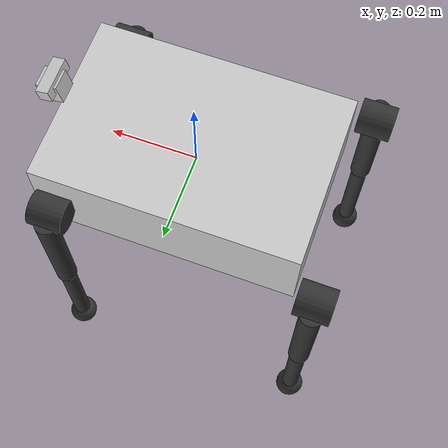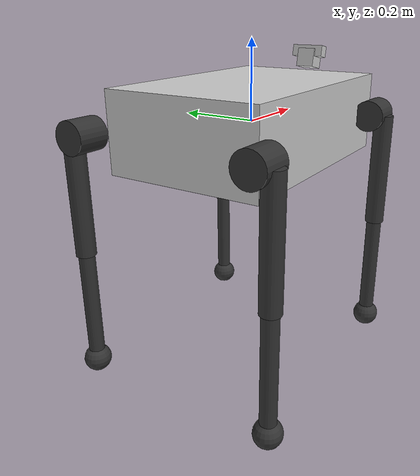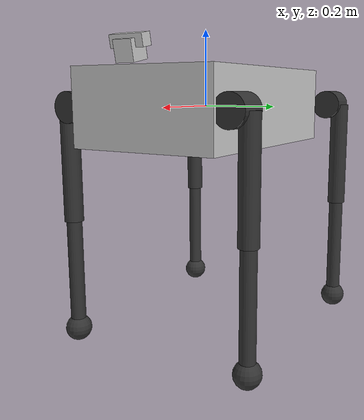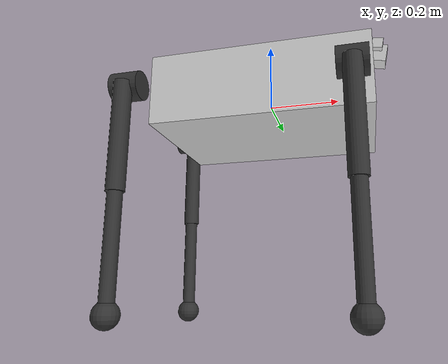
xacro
<?xml version="1.0"?>
<robot xmlns:xacro="http://www.ros.org/wiki/xacro" name="anymal_simple">

  <!-- Constants -->
  <xacro:property name="body_length" value="0.6"/>
  <xacro:property name="body_width" value="0.4"/>
  <xacro:property name="body_height" value="0.2"/>
  <xacro:property name="upper_leg_length" value="0.3"/>
  <xacro:property name="lower_leg_length" value="0.3"/>
  <xacro:property name="foot_radius" value="0.035"/>

  <!-- Physics properties -->
  <xacro:property name="body_mass" value="35.0"/>
  <xacro:property name="hip_mass" value="2.5"/>
  <xacro:property name="upper_leg_mass" value="2.0"/>
  <xacro:property name="lower_leg_mass" value="1.2"/>
  <xacro:property name="foot_mass" value="0.15"/>

  <!-- Friction and damping -->
  <xacro:property name="joint_damping" value="0.5"/>
  <xacro:property name="joint_friction" value="0.1"/>
  <xacro:property name="foot_friction_mu1" value="1.5"/>
  <xacro:property name="foot_friction_mu2" value="1.5"/>

  <!-- Materials -->
  <material name="body_color">
    <color rgba="0.8 0.8 0.8 1.0"/>
  </material>

  <material name="leg_color">
    <color rgba="0.2 0.2 0.2 1.0"/>
  </material>

  <!-- Base link (body) -->
  <link name="base_link">
    <visual>
      <geometry>
        <box size="${body_length} ${body_width} ${body_height}"/>
      </geometry>
      <material name="body_color"/>
    </visual>
    <collision>
      <geometry>
        <box size="${body_length} ${body_width} ${body_height}"/>
      </geometry>
      <surface>
        <friction>
          <ode>
            <mu>0.8</mu>
            <mu2>0.8</mu2>
          </ode>
        </friction>
      </surface>
    </collision>
    <inertial>
      <origin xyz="0 0 0" rpy="0 0 0"/>
      <mass value="${body_mass}"/>
      <inertia
        ixx="${body_mass * (body_width*body_width + body_height*body_height) / 12.0}"
        ixy="0.0"
        ixz="0.0"
        iyy="${body_mass * (body_length*body_length + body_height*body_height) / 12.0}"
        iyz="0.0"
        izz="${body_mass * (body_length*body_length + body_width*body_width) / 12.0}"/>
    </inertial>
  </link>

  <!-- IMU link -->
  <link name="imu_link">
    <inertial>
      <mass value="0.01"/>
      <inertia ixx="0.0001" ixy="0" ixz="0" iyy="0.0001" iyz="0" izz="0.0001"/>
    </inertial>
  </link>

  <joint name="imu_joint" type="fixed">
    <parent link="base_link"/>
    <child link="imu_link"/>
    <origin xyz="0 0 0" rpy="0 0 0"/>
  </joint>

  <!-- IMU sensor plugin -->
  <gazebo reference="imu_link">
    <sensor name="imu_sensor" type="imu">
      <always_on>true</always_on>
      <update_rate>100</update_rate>
      <plugin filename="libgazebo_ros_imu_sensor.so" name="imu_plugin">
        <ros>
          <namespace>/</namespace>
          <remapping>~/out:=imu</remapping>
        </ros>
        <initial_orientation_as_reference>false</initial_orientation_as_reference>
      </plugin>
    </sensor>
  </gazebo>

  <!-- Leg macro -->
  <xacro:macro name="leg" params="name x y reflect">

    <!-- Hip joint (HAA - Hip Abduction/Adduction) -->
    <joint name="${name}_haa_joint" type="revolute">
      <parent link="base_link"/>
      <child link="${name}_hip_link"/>
      <origin xyz="${x} ${y} 0" rpy="0 0 0"/>
      <axis xyz="1 0 0"/>
      <limit lower="-0.4" upper="0.4" effort="80" velocity="12"/>
      <dynamics damping="${joint_damping}" friction="${joint_friction}"/>
    </joint>

    <link name="${name}_hip_link">
      <visual>
        <origin xyz="0 ${reflect*0.03} 0" rpy="0 1.5708 0"/>
        <geometry>
          <cylinder radius="0.04" length="0.08"/>
        </geometry>
        <material name="leg_color"/>
      </visual>
      <collision>
        <origin xyz="0 ${reflect*0.03} 0" rpy="0 1.5708 0"/>
        <geometry>
          <cylinder radius="0.04" length="0.08"/>
        </geometry>
      </collision>
      <inertial>
        <origin xyz="0 ${reflect*0.03} 0" rpy="0 0 0"/>
        <mass value="${hip_mass}"/>
        <inertia ixx="0.002" ixy="0.0" ixz="0.0" iyy="0.002" iyz="0.0" izz="0.001"/>
      </inertial>
    </link>

    <!-- Hip flexion joint (HFE - Hip Flexion/Extension) -->
    <joint name="${name}_hfe_joint" type="revolute">
      <parent link="${name}_hip_link"/>
      <child link="${name}_upper_leg_link"/>
      <origin xyz="0 ${reflect*0.06} 0" rpy="0 0 0"/>
      <axis xyz="0 1 0"/>
      <limit lower="-1.8" upper="1.8" effort="80" velocity="12"/>
      <dynamics damping="${joint_damping}" friction="${joint_friction}"/>
    </joint>

    <link name="${name}_upper_leg_link">
      <visual>
        <origin xyz="0 0 -${upper_leg_length/2}" rpy="0 0 0"/>
        <geometry>
          <cylinder radius="0.025" length="${upper_leg_length}"/>
        </geometry>
        <material name="leg_color"/>
      </visual>
      <collision>
        <origin xyz="0 0 -${upper_leg_length/2}" rpy="0 0 0"/>
        <geometry>
          <cylinder radius="0.025" length="${upper_leg_length}"/>
        </geometry>
      </collision>
      <inertial>
        <origin xyz="0 0 -${upper_leg_length/2}" rpy="0 0 0"/>
        <mass value="${upper_leg_mass}"/>
        <inertia
          ixx="${upper_leg_mass * (3*0.025*0.025 + upper_leg_length*upper_leg_length) / 12.0}"
          ixy="0.0"
          ixz="0.0"
          iyy="${upper_leg_mass * (3*0.025*0.025 + upper_leg_length*upper_leg_length) / 12.0}"
          iyz="0.0"
          izz="${upper_leg_mass * 0.025*0.025 / 2.0}"/>
      </inertial>
    </link>

    <!-- Knee joint (KFE - Knee Flexion/Extension) -->
    <joint name="${name}_kfe_joint" type="revolute">
      <parent link="${name}_upper_leg_link"/>
      <child link="${name}_lower_leg_link"/>
      <origin xyz="0 0 -${upper_leg_length}" rpy="0 0 0"/>
      <axis xyz="0 1 0"/>
      <limit lower="-2.7" upper="0.6" effort="80" velocity="12"/>
      <dynamics damping="${joint_damping}" friction="${joint_friction}"/>
    </joint>

    <link name="${name}_lower_leg_link">
      <visual>
        <origin xyz="0 0 -${lower_leg_length/2}" rpy="0 0 0"/>
        <geometry>
          <cylinder radius="0.02" length="${lower_leg_length}"/>
        </geometry>
        <material name="leg_color"/>
      </visual>
      <collision>
        <origin xyz="0 0 -${lower_leg_length/2}" rpy="0 0 0"/>
        <geometry>
          <cylinder radius="0.02" length="${lower_leg_length}"/>
        </geometry>
      </collision>
      <inertial>
        <origin xyz="0 0 -${lower_leg_length/2}" rpy="0 0 0"/>
        <mass value="${lower_leg_mass}"/>
        <inertia
          ixx="${lower_leg_mass * (3*0.02*0.02 + lower_leg_length*lower_leg_length) / 12.0}"
          ixy="0.0"
          ixz="0.0"
          iyy="${lower_leg_mass * (3*0.02*0.02 + lower_leg_length*lower_leg_length) / 12.0}"
          iyz="0.0"
          izz="${lower_leg_mass * 0.02*0.02 / 2.0}"/>
      </inertial>
    </link>

    <!-- Foot -->
    <link name="${name}_foot_link">
      <visual>
        <geometry>
          <sphere radius="${foot_radius}"/>
        </geometry>
        <material name="leg_color"/>
      </visual>
      <collision>
        <geometry>
          <sphere radius="${foot_radius}"/>
        </geometry>
        <surface>
          <friction>
            <ode>
              <mu>${foot_friction_mu1}</mu>
              <mu2>${foot_friction_mu2}</mu2>
              <slip1>0.0</slip1>
              <slip2>0.0</slip2>
            </ode>
          </friction>
          <contact>
            <ode>
              <kp>1000000.0</kp>
              <kd>100.0</kd>
              <max_vel>0.01</max_vel>
              <min_depth>0.001</min_depth>
            </ode>
          </contact>
        </surface>
      </collision>
      <inertial>
        <mass value="${foot_mass}"/>
        <inertia
          ixx="${2.0 * foot_mass * foot_radius * foot_radius / 5.0}"
          ixy="0.0"
          ixz="0.0"
          iyy="${2.0 * foot_mass * foot_radius * foot_radius / 5.0}"
          iyz="0.0"
          izz="${2.0 * foot_mass * foot_radius * foot_radius / 5.0}"/>
      </inertial>
    </link>

    <joint name="${name}_foot_joint" type="fixed">
      <parent link="${name}_lower_leg_link"/>
      <child link="${name}_foot_link"/>
      <origin xyz="0 0 -${lower_leg_length}" rpy="0 0 0"/>
    </joint>

    <!-- Gazebo-specific properties for foot -->
    <gazebo reference="${name}_foot_link">
      <mu1>${foot_friction_mu1}</mu1>
      <mu2>${foot_friction_mu2}</mu2>
      <kp>1000000.0</kp>
      <kd>100.0</kd>
      <minDepth>0.001</minDepth>
      <maxVel>0.01</maxVel>
      <material>Gazebo/FlatBlack</material>
    </gazebo>

  </xacro:macro>

  <!-- Create all four legs -->
  <xacro:leg name="lf" x="${body_length/2-0.05}" y="${body_width/2}" reflect="1"/>
  <xacro:leg name="rf" x="${body_length/2-0.05}" y="-${body_width/2}" reflect="-1"/>
  <xacro:leg name="lh" x="-${body_length/2+0.05}" y="${body_width/2}" reflect="1"/>
  <xacro:leg name="rh" x="-${body_length/2+0.05}" y="-${body_width/2}" reflect="-1"/>

  <!-- Camera sensor -->
  <link name="camera_link">
    <visual>
      <geometry>
        <box size="0.05 0.05 0.05"/>
      </geometry>
      <material name="body_color"/>
    </visual>
    <collision>
      <geometry>
        <box size="0.05 0.05 0.05"/>
      </geometry>
    </collision>
    <inertial>
      <mass value="0.1"/>
      <inertia ixx="0.0001" ixy="0.0" ixz="0.0" iyy="0.0001" iyz="0.0" izz="0.0001"/>
    </inertial>
  </link>

  <joint name="camera_joint" type="fixed">
    <parent link="base_link"/>
    <child link="camera_link"/>
    <origin xyz="${body_length/2+0.02} 0 ${body_height/2 + 0.03}" rpy="0 0.2 0"/>
  </joint>

  <!-- Camera sensor plugin -->
  <gazebo reference="camera_link">
    <sensor type="camera" name="camera">
      <always_on>true</always_on>
      <update_rate>30.0</update_rate>
      <camera name="head">
        <horizontal_fov>1.3962634</horizontal_fov>
        <image>
          <width>640</width>
          <height>480</height>
          <format>R8G8B8</format>
        </image>
        <clip>
          <near>0.02</near>
          <far>300</far>
        </clip>
        <noise>
          <type>gaussian</type>
          <mean>0.0</mean>
          <stddev>0.007</stddev>
        </noise>
      </camera>
      <plugin name="camera_controller" filename="libgazebo_ros_camera.so">
        <ros>
          <namespace>/</namespace>
          <remapping>~/image_raw:=camera/image_raw</remapping>
          <remapping>~/camera_info:=camera/camera_info</remapping>
        </ros>
        <camera_name>camera</camera_name>
        <frame_name>camera_link</frame_name>
        <hack_baseline>0.07</hack_baseline>
      </plugin>
    </sensor>
  </gazebo>

  <!-- Depth camera -->
  <link name="camera_depth_link">
    <visual>
      <geometry>
        <box size="0.03 0.09 0.03"/>
      </geometry>
      <material name="body_color"/>
    </visual>
    <collision>
      <geometry>
        <box size="0.03 0.09 0.03"/>
      </geometry>
    </collision>
    <inertial>
      <mass value="0.08"/>
      <inertia ixx="0.0001" ixy="0.0" ixz="0.0" iyy="0.0001" iyz="0.0" izz="0.0001"/>
    </inertial>
  </link>

  <joint name="camera_depth_joint" type="fixed">
    <parent link="base_link"/>
    <child link="camera_depth_link"/>
    <origin xyz="${body_length/2+0.02} 0 ${body_height/2 + 0.05}" rpy="0 0.2 0"/>
  </joint>

  <!-- Depth camera sensor plugin -->
  <gazebo reference="camera_depth_link">
    <sensor type="depth" name="depth_camera">
      <always_on>true</always_on>
      <update_rate>20.0</update_rate>
      <camera name="depth">
        <horizontal_fov>1.047</horizontal_fov>
        <image>
          <width>640</width>
          <height>480</height>
          <format>R8G8B8</format>
        </image>
        <clip>
          <near>0.1</near>
          <far>10.0</far>
        </clip>
        <noise>
          <type>gaussian</type>
          <mean>0.0</mean>
          <stddev>0.01</stddev>
        </noise>
      </camera>
      <plugin name="depth_camera_controller" filename="libgazebo_ros_camera.so">
        <ros>
          <namespace>/</namespace>
          <remapping>~/image_raw:=camera/depth/image_raw</remapping>
          <remapping>~/camera_info:=camera/depth/camera_info</remapping>
          <remapping>~/depth/image_raw:=camera/depth/image_raw</remapping>
          <remapping>~/points:=camera/depth/points</remapping>
        </ros>
        <camera_name>depth_camera</camera_name>
        <frame_name>camera_depth_optical_frame</frame_name>
        <hack_baseline>0.07</hack_baseline>
        <min_depth>0.1</min_depth>
        <max_depth>10.0</max_depth>
      </plugin>
    </sensor>
  </gazebo>

  <!-- Additional optical frame -->
  <link name="camera_depth_optical_frame"/>
  <joint name="camera_depth_optical_joint" type="fixed">
    <parent link="camera_depth_link"/>
    <child link="camera_depth_optical_frame"/>
    <origin xyz="0 0 0" rpy="${-pi/2} 0 ${-pi/2}"/>
  </joint>

  <!-- Gazebo materials -->
  <gazebo reference="base_link">
    <material>Gazebo/Grey</material>
    <mu1>0.8</mu1>
    <mu2>0.8</mu2>
  </gazebo>

  <!-- Gazebo ros2_control plugin -->
  <gazebo>
    <plugin name="gazebo_ros2_control" filename="libgazebo_ros2_control.so">
      <parameters>$(find terrain_description)/config/anymal_controllers.yaml</parameters>
    </plugin>
  </gazebo>

  <!-- ros2_control configuration -->
  <ros2_control name="GazeboSystem" type="system">
    <hardware>
      <plugin>gazebo_ros2_control/GazeboSystem</plugin>
    </hardware>

    <!-- Left Front leg joints -->
    <joint name="lf_haa_joint">
      <command_interface name="position">
        <param name="min">-0.4</param>
        <param name="max">0.4</param>
      </command_interface>
      <state_interface name="position"/>
      <state_interface name="velocity"/>
      <state_interface name="effort"/>
    </joint>
    <joint name="lf_hfe_joint">
      <command_interface name="position">
        <param name="min">-1.8</param>
        <param name="max">1.8</param>
      </command_interface>
      <state_interface name="position"/>
      <state_interface name="velocity"/>
      <state_interface name="effort"/>
    </joint>
    <joint name="lf_kfe_joint">
      <command_interface name="position">
        <param name="min">-2.7</param>
        <param name="max">0.6</param>
      </command_interface>
      <state_interface name="position"/>
      <state_interface name="velocity"/>
      <state_interface name="effort"/>
    </joint>

    <!-- Right Front leg joints -->
    <joint name="rf_haa_joint">
      <command_interface name="position">
        <param name="min">-0.4</param>
        <param name="max">0.4</param>
      </command_interface>
      <state_interface name="position"/>
      <state_interface name="velocity"/>
      <state_interface name="effort"/>
    </joint>
    <joint name="rf_hfe_joint">
      <command_interface name="position">
        <param name="min">-1.8</param>
        <param name="max">1.8</param>
      </command_interface>
      <state_interface name="position"/>
      <state_interface name="velocity"/>
      <state_interface name="effort"/>
    </joint>
    <joint name="rf_kfe_joint">
      <command_interface name="position">
        <param name="min">-2.7</param>
        <param name="max">0.6</param>
      </command_interface>
      <state_interface name="position"/>
      <state_interface name="velocity"/>
      <state_interface name="effort"/>
    </joint>

    <!-- Left Hind leg joints -->
    <joint name="lh_haa_joint">
      <command_interface name="position">
        <param name="min">-0.4</param>
        <param name="max">0.4</param>
      </command_interface>
      <state_interface name="position"/>
      <state_interface name="velocity"/>
      <state_interface name="effort"/>
    </joint>
    <joint name="lh_hfe_joint">
      <command_interface name="position">
        <param name="min">-1.8</param>
        <param name="max">1.8</param>
      </command_interface>
      <state_interface name="position"/>
      <state_interface name="velocity"/>
      <state_interface name="effort"/>
    </joint>
    <joint name="lh_kfe_joint">
      <command_interface name="position">
        <param name="min">-2.7</param>
        <param name="max">0.6</param>
      </command_interface>
      <state_interface name="position"/>
      <state_interface name="velocity"/>
      <state_interface name="effort"/>
    </joint>

    <!-- Right Hind leg joints -->
    <joint name="rh_haa_joint">
      <command_interface name="position">
        <param name="min">-0.4</param>
        <param name="max">0.4</param>
      </command_interface>
      <state_interface name="position"/>
      <state_interface name="velocity"/>
      <state_interface name="effort"/>
    </joint>
    <joint name="rh_hfe_joint">
      <command_interface name="position">
        <param name="min">-1.8</param>
        <param name="max">1.8</param>
      </command_interface>
      <state_interface name="position"/>
      <state_interface name="velocity"/>
      <state_interface name="effort"/>
    </joint>
    <joint name="rh_kfe_joint">
      <command_interface name="position">
        <param name="min">-2.7</param>
        <param name="max">0.6</param>
      </command_interface>
      <state_interface name="position"/>
      <state_interface name="velocity"/>
      <state_interface name="effort"/>
    </joint>
  </ros2_control>

</robot>
